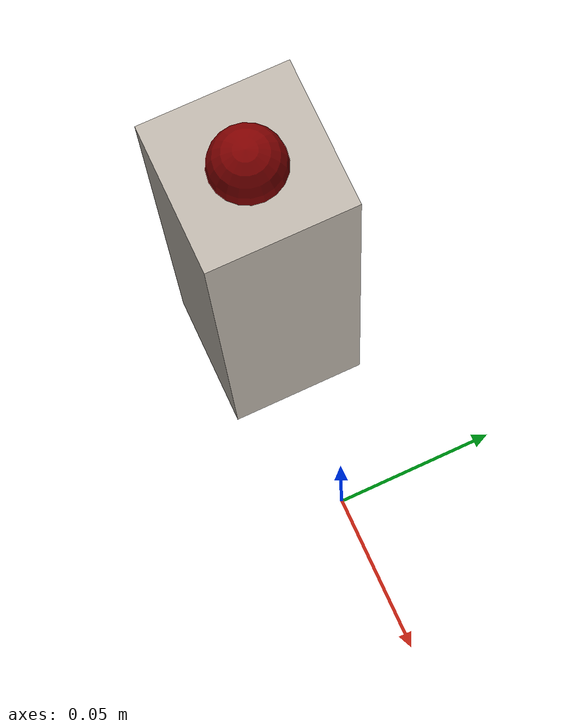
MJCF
<mujoco>
    <asset>
        <texture name="oriented_screw_driver" type="cube"
                 fileup="../cube/reorientation_cube_textures/fileup.png"
                 fileback="../cube/reorientation_cube_textures/fileback.png"
                 filedown="../cube/reorientation_cube_textures/filedown.png"
                 filefront="../cube/reorientation_cube_textures/filefront.png"
                 fileleft="../cube/reorientation_cube_textures/fileleft.png"
                 fileright="../cube/reorientation_cube_textures/fileright.png"/>
        <material name="oriented_screw_driver" texture="oriented_screw_driver"/>
        <texture name="gray_screw_driver" type="cube"
                 fileup="../cube/reorientation_cube_textures/grayup.png"
                 fileback="../cube/reorientation_cube_textures/grayback.png"
                 filedown="../cube/reorientation_cube_textures/graydown.png"
                 filefront="../cube/reorientation_cube_textures/grayfront.png"
                 fileleft="../cube/reorientation_cube_textures/grayleft.png"
                 fileright="../cube/reorientation_cube_textures/grayright.png"/>
        <material name="gray_screw_driver" texture="gray_screw_driver"/>
    </asset>
    <worldbody>
        <light pos="0 0 1"/>
        <body name="screw_driver" pos="-0.05 0 0.1" quat="1 0 0 0">
            <joint name="Rz" pos="0 0 0" axis="0 0 1" type="hinge" range="-1000.57 1000.57" damping="0.01"
                   armature="0.01"/>
            <geom name="screw_driver" type="box" size=".02 .02 .07" material="oriented_screw_driver"
                  friction="0.3 0.05 0.01"
                  conaffinity="2"/>
            <site name="screw_driver"/>
            <site name="screw_driver_head_a" rgba="0.5 0 0 1" type="sphere" size="0.01" pos="0 0 0.07" />
            <site name="screw_driver_head_b" rgba="0 0.5 0 1" type="sphere" size="0.01" pos="0 0 -0.07" />
        </body>
    </worldbody>
</mujoco>
